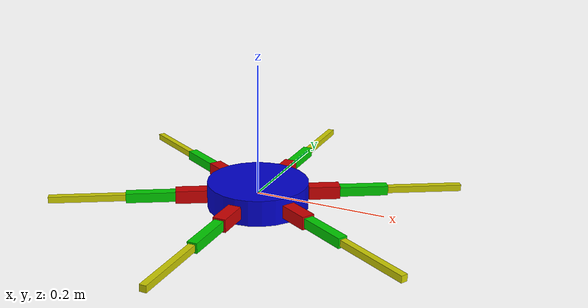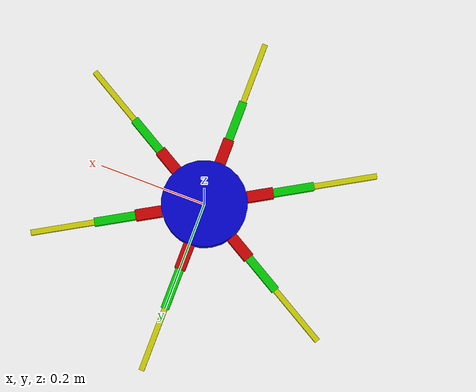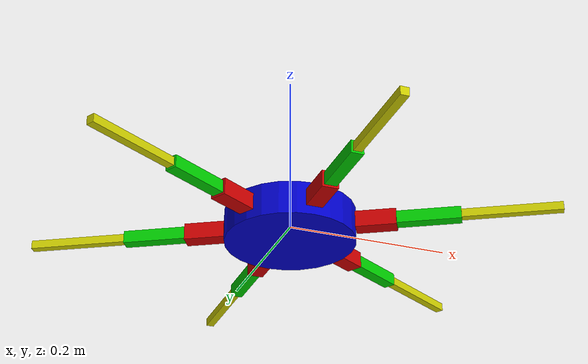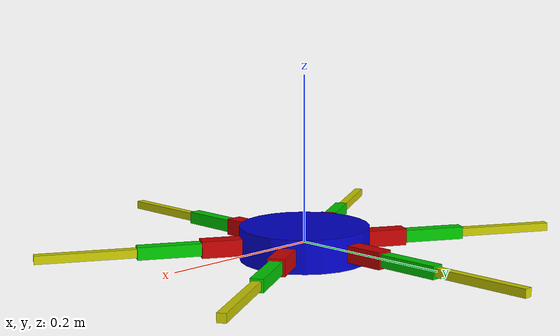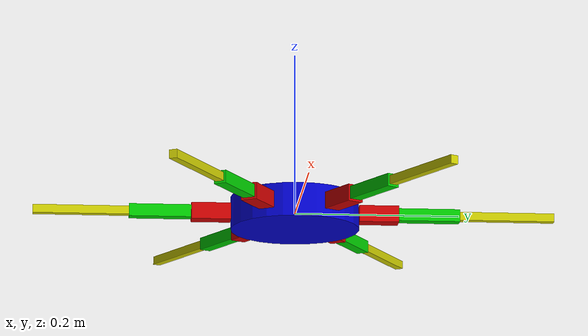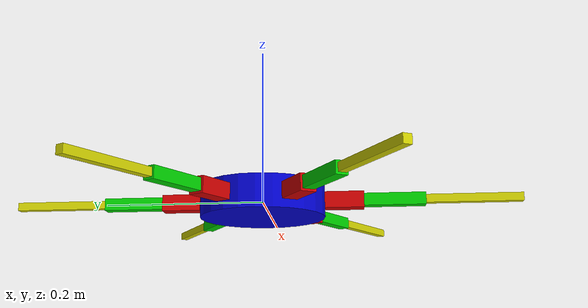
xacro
<?xml version="1.0"?>
<robot name="hexapod" xmlns:xacro="http://ros.org/wiki/xacro">

  <xacro:property name="base_radius" value="0.078"/>
  <xacro:property name="l_coxa" value="0.048"/>
  <xacro:property name="l_femur" value="0.075"/>
  <xacro:property name="l_tibia" value="0.116"/>

  <link name="base_link">
    <visual>
      <geometry>
        <cylinder radius="${base_radius}" length="0.04"/>
      </geometry>
      <material name="blue">
        <color rgba="0 0 0.8 1"/>
      </material>
    </visual>
  </link>

  <xacro:macro name="leg" params="prefix angle">

    <joint name="${prefix}_coxa_joint" type="revolute">
      <parent link="base_link"/>
      <child link="${prefix}_coxa"/>

      <origin xyz="${base_radius * cos(angle)} ${base_radius * sin(angle)} 0" rpy="0 0 ${angle}"/>
      <axis xyz="0 0 1"/>
      <limit lower="-1.57" upper="1.57" effort="10" velocity="3"/>
    </joint>

    <link name="${prefix}_coxa">
      <visual>
        <origin xyz="${l_coxa/2} 0 0" rpy="0 0 0"/>
        <geometry>
          <box size="${l_coxa} 0.02 0.02"/>
        </geometry>
        <material name="red">
          <color rgba="0.8 0 0 1"/>
        </material>
      </visual>
    </link>

    <joint name="${prefix}_femur_joint" type="revolute">
      <parent link="${prefix}_coxa"/>
      <child link="${prefix}_femur"/>
      <origin xyz="${l_coxa} 0 0" rpy="0 0 0"/>
      <axis xyz="0 1 0"/>
      <limit lower="-1.57" upper="1.57" effort="10" velocity="3"/>
    </joint>

    <link name="${prefix}_femur">
      <visual>
        <origin xyz="${l_femur/2} 0 0" rpy="0 0 0"/>
        <geometry>
          <box size="${l_femur} 0.015 0.015"/>
        </geometry>
        <material name="green">
          <color rgba="0 0.8 0 1"/>
        </material>
      </visual>
    </link>

    <joint name="${prefix}_tibia_joint" type="revolute">
      <parent link="${prefix}_femur"/>
      <child link="${prefix}_tibia"/>
      <origin xyz="${l_femur} 0 0" rpy="0 0 0"/>
      <axis xyz="0 1 0"/>
      <limit lower="-2.0" upper="2.0" effort="10" velocity="3"/>
    </joint>

    <link name="${prefix}_tibia">
      <visual>
        <origin xyz="${l_tibia/2} 0 0" rpy="0 0 0"/>
        <geometry>
          <box size="${l_tibia} 0.01 0.01"/>
        </geometry>
        <material name="yellow">
          <color rgba="0.8 0.8 0 1"/>
        </material>
      </visual>
    </link>

  </xacro:macro>

  <xacro:leg prefix="leg0" angle="${pi/6}"/>
  <xacro:leg prefix="leg1" angle="${pi/2}"/>
  <xacro:leg prefix="leg2" angle="${5*pi/6}"/>
  <xacro:leg prefix="leg3" angle="${7*pi/6}"/>
  <xacro:leg prefix="leg4" angle="${3*pi/2}"/>
  <xacro:leg prefix="leg5" angle="${11*pi/6}"/>

</robot>
